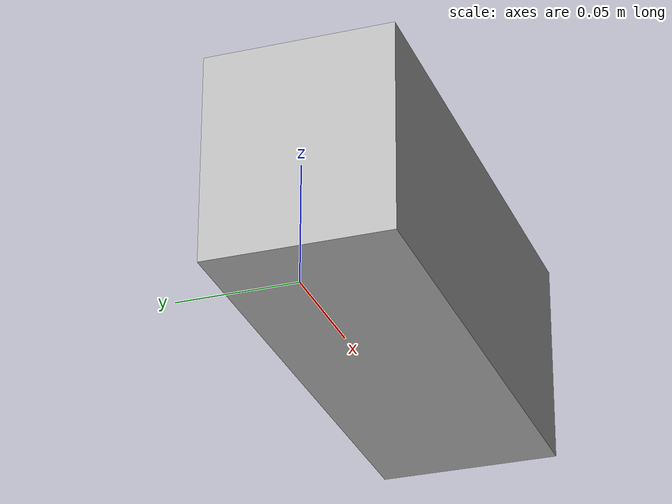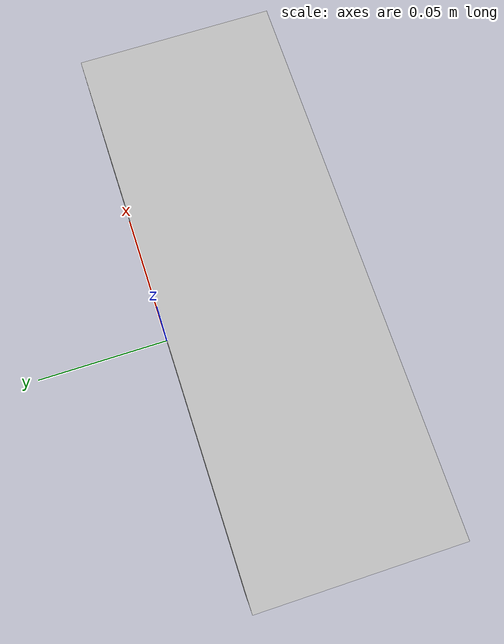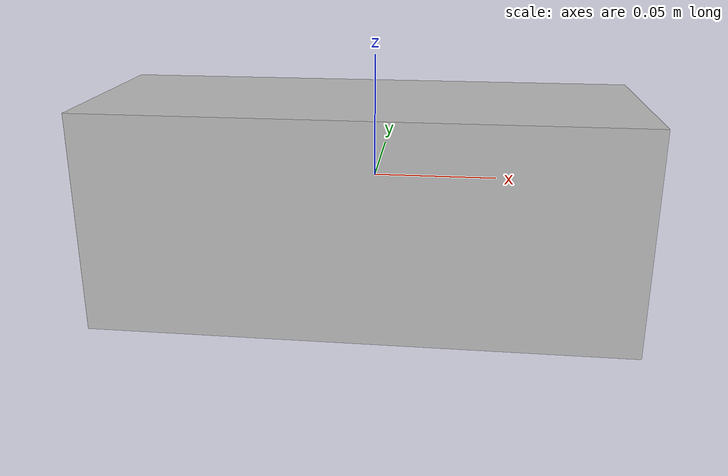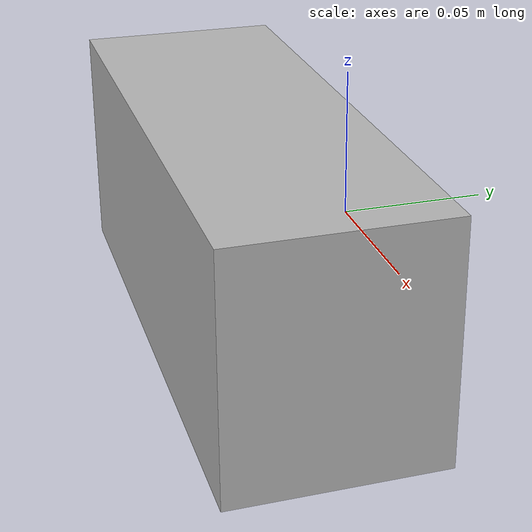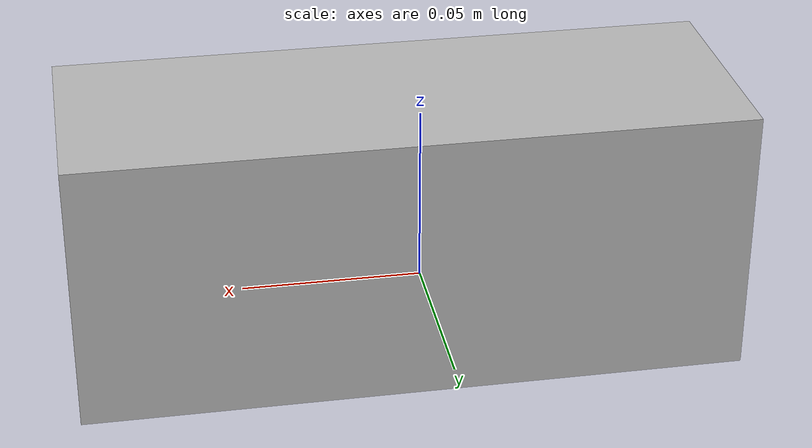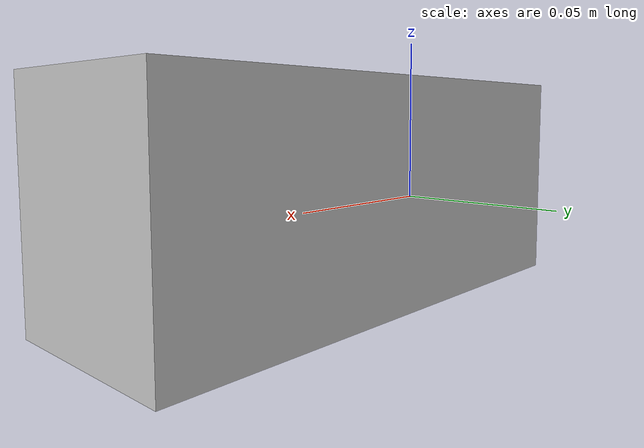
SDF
<?xml version='1.0'?>
<sdf version='1.6'>
  <model name='first_aid_kit'>
  <static> false </static>
    <link name='first_aid_kit'>
      <pose>0 0 0 0 0 3.14159</pose>
      <visual name='visual'>
        <geometry>
          <mesh>
            <uri>model://first_aid_kit/meshes/first_aid_kit.obj</uri>
            <scale>1 1 1</scale>
          </mesh>
        </geometry>
      </visual>
      <inertial>
        <pose>0 0 0 0 0 0</pose>
        <mass>1.0</mass>
        <inertia>
          <ixx>0.000942</ixx>
          <iyy>0.003702</iyy>
          <izz>0.003577</izz>
          <ixy>0.0</ixy>
          <ixz>0.0</ixz>
          <iyz>0.0</iyz>
        </inertia>
      </inertial>
      <collision name='collision'>
        <pose>0 0 0 0 0 0</pose>
        <geometry>
          <box>
            <size>0.195 0.07 0.08</size>
          </box>
        </geometry>
        <surface>
          <friction>
            <ode>
              <mu>0.6</mu>
              <mu2>0.6</mu2>
            </ode>
          </friction>
          <bounce>
            <restitution_coefficient>0.05</restitution_coefficient>
            <threshold>1.0</threshold>
          </bounce>
          <contact>
            <ode>
              <soft_cfm>0.0</soft_cfm>
              <soft_erp>0.2</soft_erp>
            </ode>
          </contact>
        </surface>
      </collision>
    </link>
  </model>
</sdf>
